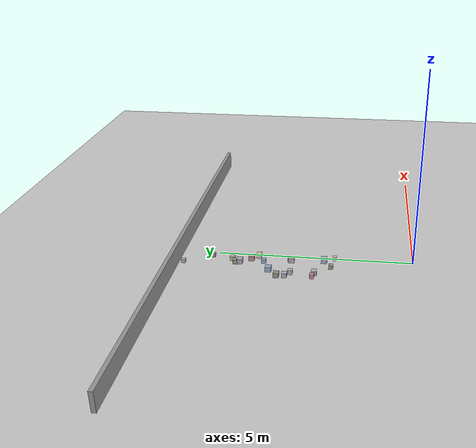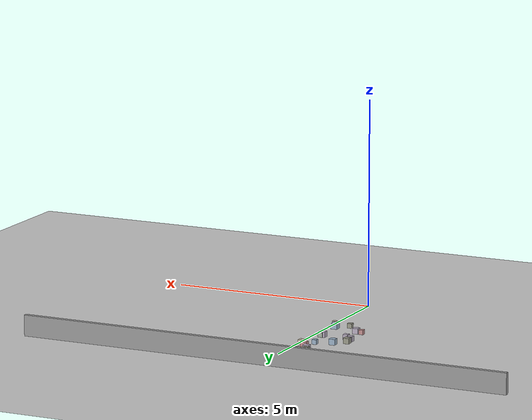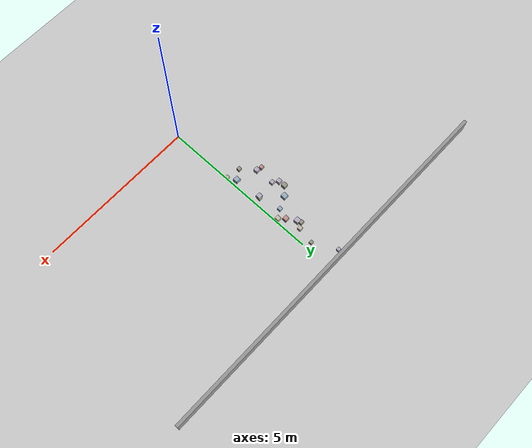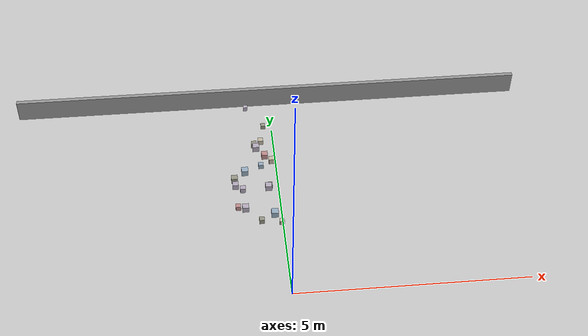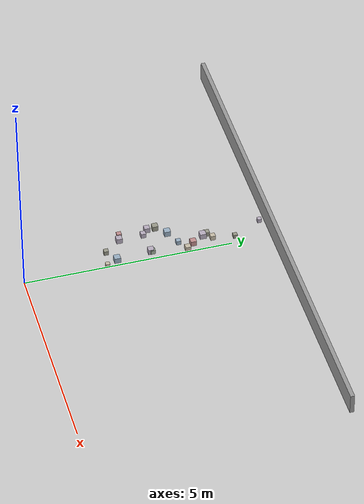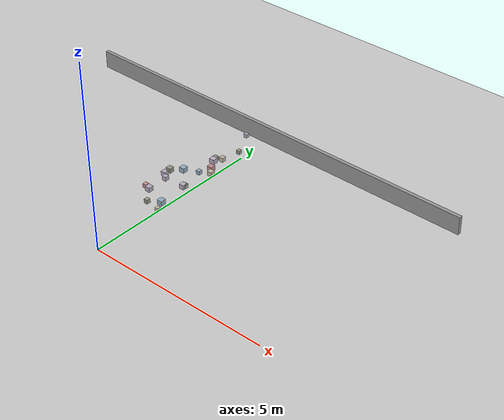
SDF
<sdf version="1.6">
 <world name="small_maze_world">
  <include><uri>model://ground_plane</uri></include>
  <include><uri>model://sun</uri></include>
  <model name="wall_north">
   <static>true</static>
   <pose>0 6 0.25 0 0 0</pose>
   <link name="link">
    <collision name="collision"><geometry><box><size>12 0.1 0.5</size></box></geometry></collision>
    <visual name="visual">
     <geometry><box><size>12 0.1 0.5</size></box></geometry>
     <material><ambient>0.6 0.6 0.6 1</ambient></material>
    </visual>
   </link>
  </model>
  <model name="box_4">
   <static>false</static>
   <pose>-0.23 3.09 0.05 0 0 0</pose>
   <link name="link">
    <inertial>
     <mass>0.2</mass>
     <inertia><ixx>0.001</ixx><iyy>0.001</iyy><izz>0.001</izz><ixy>0</ixy><ixz>0</ixz><iyz>0</iyz></inertia>
    </inertial>
    <collision name="collision"><geometry><box><size>0.14 0.14 0.14</size></box></geometry></collision>
    <visual name="visual">
     <geometry><box><size>0.14 0.14 0.14</size></box></geometry>
     <material><ambient>0.72 0.68 0.75 1</ambient><diffuse>0.72 0.68 0.75 1</diffuse></material>
    </visual>
   </link>
  </model>
  <model name="box_6">
   <static>false</static>
   <pose>-0.35 3.79 0.05 0 0 0</pose>
   <link name="link">
    <inertial>
     <mass>0.2</mass>
     <inertia><ixx>0.001</ixx><iyy>0.001</iyy><izz>0.001</izz><ixy>0</ixy><ixz>0</ixz><iyz>0</iyz></inertia>
    </inertial>
    <collision name="collision"><geometry><box><size>0.11 0.11 0.11</size></box></geometry></collision>
    <visual name="visual">
     <geometry><box><size>0.11 0.11 0.11</size></box></geometry>
     <material><ambient>0.6 0.69 0.77 1</ambient><diffuse>0.6 0.69 0.77 1</diffuse></material>
    </visual>
   </link>
  </model>
  <model name="box_31">
   <static>false</static>
   <pose>-0.3 4.61 0.05 0 0 0</pose>
   <link name="link">
    <inertial>
     <mass>0.2</mass>
     <inertia><ixx>0.001</ixx><iyy>0.001</iyy><izz>0.001</izz><ixy>0</ixy><ixz>0</ixz><iyz>0</iyz></inertia>
    </inertial>
    <collision name="collision"><geometry><box><size>0.12 0.12 0.12</size></box></geometry></collision>
    <visual name="visual">
     <geometry><box><size>0.12 0.12 0.12</size></box></geometry>
     <material><ambient>0.78 0.74 0.66 1</ambient><diffuse>0.78 0.74 0.66 1</diffuse></material>
    </visual>
   </link>
  </model>
  <model name="box_43">
   <static>false</static>
   <pose>-0.24 4.12 0.05 0 0 0</pose>
   <link name="link">
    <inertial>
     <mass>0.2</mass>
     <inertia><ixx>0.001</ixx><iyy>0.001</iyy><izz>0.001</izz><ixy>0</ixy><ixz>0</ixz><iyz>0</iyz></inertia>
    </inertial>
    <collision name="collision"><geometry><box><size>0.14 0.14 0.14</size></box></geometry></collision>
    <visual name="visual">
     <geometry><box><size>0.14 0.14 0.14</size></box></geometry>
     <material><ambient>0.76 0.56 0.56 1</ambient><diffuse>0.76 0.56 0.56 1</diffuse></material>
    </visual>
   </link>
  </model>
  <model name="box_106">
   <static>false</static>
   <pose>-0.57 5.83 0.05 0 0 0</pose>
   <link name="link">
    <inertial>
     <mass>0.2</mass>
     <inertia><ixx>0.001</ixx><iyy>0.001</iyy><izz>0.001</izz><ixy>0</ixy><ixz>0</ixz><iyz>0</iyz></inertia>
    </inertial>
    <collision name="collision"><geometry><box><size>0.1 0.1 0.1</size></box></geometry></collision>
    <visual name="visual">
     <geometry><box><size>0.1 0.1 0.1</size></box></geometry>
     <material><ambient>0.72 0.68 0.75 1</ambient><diffuse>0.72 0.68 0.75 1</diffuse></material>
    </visual>
   </link>
  </model>
  <model name="box_115">
   <static>false</static>
   <pose>-0.16 2.26 0.05 0 0 0</pose>
   <link name="link">
    <inertial>
     <mass>0.2</mass>
     <inertia><ixx>0.001</ixx><iyy>0.001</iyy><izz>0.001</izz><ixy>0</ixy><ixz>0</ixz><iyz>0</iyz></inertia>
    </inertial>
    <collision name="collision"><geometry><box><size>0.15 0.15 0.15</size></box></geometry></collision>
    <visual name="visual">
     <geometry><box><size>0.15 0.15 0.15</size></box></geometry>
     <material><ambient>0.6 0.69 0.77 1</ambient><diffuse>0.6 0.69 0.77 1</diffuse></material>
    </visual>
   </link>
  </model>
  <model name="box_130">
   <static>false</static>
   <pose>-0.97 3.19 0.05 0 0 0</pose>
   <link name="link">
    <inertial>
     <mass>0.2</mass>
     <inertia><ixx>0.001</ixx><iyy>0.001</iyy><izz>0.001</izz><ixy>0</ixy><ixz>0</ixz><iyz>0</iyz></inertia>
    </inertial>
    <collision name="collision"><geometry><box><size>0.13 0.13 0.13</size></box></geometry></collision>
    <visual name="visual">
     <geometry><box><size>0.13 0.13 0.13</size></box></geometry>
     <material><ambient>0.72 0.68 0.75 1</ambient><diffuse>0.72 0.68 0.75 1</diffuse></material>
    </visual>
   </link>
  </model>
  <model name="box_151">
   <static>false</static>
   <pose>-0.46 2.07 0.05 0 0 0</pose>
   <link name="link">
    <inertial>
     <mass>0.2</mass>
     <inertia><ixx>0.001</ixx><iyy>0.001</iyy><izz>0.001</izz><ixy>0</ixy><ixz>0</ixz><iyz>0</iyz></inertia>
    </inertial>
    <collision name="collision"><geometry><box><size>0.11 0.11 0.11</size></box></geometry></collision>
    <visual name="visual">
     <geometry><box><size>0.11 0.11 0.11</size></box></geometry>
     <material><ambient>0.6 0.6 0.54 1</ambient><diffuse>0.6 0.6 0.54 1</diffuse></material>
    </visual>
   </link>
  </model>
  <model name="box_180">
   <static>false</static>
   <pose>-0.73 3.62 0.05 0 0 0</pose>
   <link name="link">
    <inertial>
     <mass>0.2</mass>
     <inertia><ixx>0.001</ixx><iyy>0.001</iyy><izz>0.001</izz><ixy>0</ixy><ixz>0</ixz><iyz>0</iyz></inertia>
    </inertial>
    <collision name="collision"><geometry><box><size>0.15 0.15 0.15</size></box></geometry></collision>
    <visual name="visual">
     <geometry><box><size>0.15 0.15 0.15</size></box></geometry>
     <material><ambient>0.6 0.69 0.77 1</ambient><diffuse>0.6 0.69 0.77 1</diffuse></material>
    </visual>
   </link>
  </model>
  <model name="box_228">
   <static>false</static>
   <pose>-0.95 2.51 0.05 0 0 0</pose>
   <link name="link">
    <inertial>
     <mass>0.2</mass>
     <inertia><ixx>0.001</ixx><iyy>0.001</iyy><izz>0.001</izz><ixy>0</ixy><ixz>0</ixz><iyz>0</iyz></inertia>
    </inertial>
    <collision name="collision"><geometry><box><size>0.11 0.11 0.11</size></box></geometry></collision>
    <visual name="visual">
     <geometry><box><size>0.11 0.11 0.11</size></box></geometry>
     <material><ambient>0.76 0.56 0.56 1</ambient><diffuse>0.76 0.56 0.56 1</diffuse></material>
    </visual>
   </link>
  </model>
  <model name="box_256">
   <static>false</static>
   <pose>-0.81 3.06 0.05 0 0 0</pose>
   <link name="link">
    <inertial>
     <mass>0.2</mass>
     <inertia><ixx>0.001</ixx><iyy>0.001</iyy><izz>0.001</izz><ixy>0</ixy><ixz>0</ixz><iyz>0</iyz></inertia>
    </inertial>
    <collision name="collision"><geometry><box><size>0.12 0.12 0.12</size></box></geometry></collision>
    <visual name="visual">
     <geometry><box><size>0.12 0.12 0.12</size></box></geometry>
     <material><ambient>0.72 0.68 0.75 1</ambient><diffuse>0.72 0.68 0.75 1</diffuse></material>
    </visual>
   </link>
  </model>
  <model name="box_270">
   <static>false</static>
   <pose>-0.2 3.13 0.05 0 0 0</pose>
   <link name="link">
    <inertial>
     <mass>0.2</mass>
     <inertia><ixx>0.001</ixx><iyy>0.001</iyy><izz>0.001</izz><ixy>0</ixy><ixz>0</ixz><iyz>0</iyz></inertia>
    </inertial>
    <collision name="collision"><geometry><box><size>0.11 0.11 0.11</size></box></geometry></collision>
    <visual name="visual">
     <geometry><box><size>0.11 0.11 0.11</size></box></geometry>
     <material><ambient>0.64 0.69 0.62 1</ambient><diffuse>0.64 0.69 0.62 1</diffuse></material>
    </visual>
   </link>
  </model>
  <model name="box_280">
   <static>false</static>
   <pose>-0.79 2.47 0.05 0 0 0</pose>
   <link name="link">
    <inertial>
     <mass>0.2</mass>
     <inertia><ixx>0.001</ixx><iyy>0.001</iyy><izz>0.001</izz><ixy>0</ixy><ixz>0</ixz><iyz>0</iyz></inertia>
    </inertial>
    <collision name="collision"><geometry><box><size>0.14 0.14 0.14</size></box></geometry></collision>
    <visual name="visual">
     <geometry><box><size>0.14 0.14 0.14</size></box></geometry>
     <material><ambient>0.72 0.68 0.75 1</ambient><diffuse>0.72 0.68 0.75 1</diffuse></material>
    </visual>
   </link>
  </model>
  <model name="box_292">
   <static>false</static>
   <pose>-0.09 3.95 0.05 0 0 0</pose>
   <link name="link">
    <inertial>
     <mass>0.2</mass>
     <inertia><ixx>0.001</ixx><iyy>0.001</iyy><izz>0.001</izz><ixy>0</ixy><ixz>0</ixz><iyz>0</iyz></inertia>
    </inertial>
    <collision name="collision"><geometry><box><size>0.13 0.13 0.13</size></box></geometry></collision>
    <visual name="visual">
     <geometry><box><size>0.13 0.13 0.13</size></box></geometry>
     <material><ambient>0.78 0.74 0.66 1</ambient><diffuse>0.78 0.74 0.66 1</diffuse></material>
    </visual>
   </link>
  </model>
  <model name="box_296">
   <static>false</static>
   <pose>-0.42 4.4 0.05 0 0 0</pose>
   <link name="link">
    <inertial>
     <mass>0.2</mass>
     <inertia><ixx>0.001</ixx><iyy>0.001</iyy><izz>0.001</izz><ixy>0</ixy><ixz>0</ixz><iyz>0</iyz></inertia>
    </inertial>
    <collision name="collision"><geometry><box><size>0.15 0.15 0.15</size></box></geometry></collision>
    <visual name="visual">
     <geometry><box><size>0.15 0.15 0.15</size></box></geometry>
     <material><ambient>0.72 0.68 0.75 1</ambient><diffuse>0.72 0.68 0.75 1</diffuse></material>
    </visual>
   </link>
  </model>
  <model name="box_317">
   <static>false</static>
   <pose>-0.2 5.13 0.05 0 0 0</pose>
   <link name="link">
    <inertial>
     <mass>0.2</mass>
     <inertia><ixx>0.001</ixx><iyy>0.001</iyy><izz>0.001</izz><ixy>0</ixy><ixz>0</ixz><iyz>0</iyz></inertia>
    </inertial>
    <collision name="collision"><geometry><box><size>0.1 0.1 0.1</size></box></geometry></collision>
    <visual name="visual">
     <geometry><box><size>0.1 0.1 0.1</size></box></geometry>
     <material><ambient>0.6 0.6 0.54 1</ambient><diffuse>0.6 0.6 0.54 1</diffuse></material>
    </visual>
   </link>
  </model>
  <model name="box_333">
   <static>false</static>
   <pose>-0.03 2.0 0.05 0 0 0</pose>
   <link name="link">
    <inertial>
     <mass>0.2</mass>
     <inertia><ixx>0.001</ixx><iyy>0.001</iyy><izz>0.001</izz><ixy>0</ixy><ixz>0</ixz><iyz>0</iyz></inertia>
    </inertial>
    <collision name="collision"><geometry><box><size>0.1 0.1 0.1</size></box></geometry></collision>
    <visual name="visual">
     <geometry><box><size>0.1 0.1 0.1</size></box></geometry>
     <material><ambient>0.78 0.74 0.66 1</ambient><diffuse>0.78 0.74 0.66 1</diffuse></material>
    </visual>
   </link>
  </model>
  <model name="box_348">
   <static>false</static>
   <pose>-0.98 3.39 0.05 0 0 0</pose>
   <link name="link">
    <inertial>
     <mass>0.2</mass>
     <inertia><ixx>0.001</ixx><iyy>0.001</iyy><izz>0.001</izz><ixy>0</ixy><ixz>0</ixz><iyz>0</iyz></inertia>
    </inertial>
    <collision name="collision"><geometry><box><size>0.14 0.14 0.14</size></box></geometry></collision>
    <visual name="visual">
     <geometry><box><size>0.14 0.14 0.14</size></box></geometry>
     <material><ambient>0.6 0.6 0.54 1</ambient><diffuse>0.6 0.6 0.54 1</diffuse></material>
    </visual>
   </link>
  </model>
  <model name="box_363">
   <static>false</static>
   <pose>-0.46 4.51 0.05 0 0 0</pose>
   <link name="link">
    <inertial>
     <mass>0.2</mass>
     <inertia><ixx>0.001</ixx><iyy>0.001</iyy><izz>0.001</izz><ixy>0</ixy><ixz>0</ixz><iyz>0</iyz></inertia>
    </inertial>
    <collision name="collision"><geometry><box><size>0.12 0.12 0.12</size></box></geometry></collision>
    <visual name="visual">
     <geometry><box><size>0.12 0.12 0.12</size></box></geometry>
     <material><ambient>0.6 0.6 0.54 1</ambient><diffuse>0.6 0.6 0.54 1</diffuse></material>
    </visual>
   </link>
  </model>
 </world>
</sdf>
